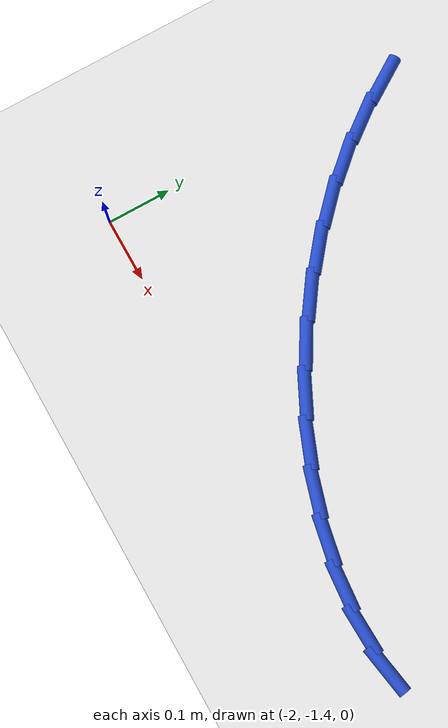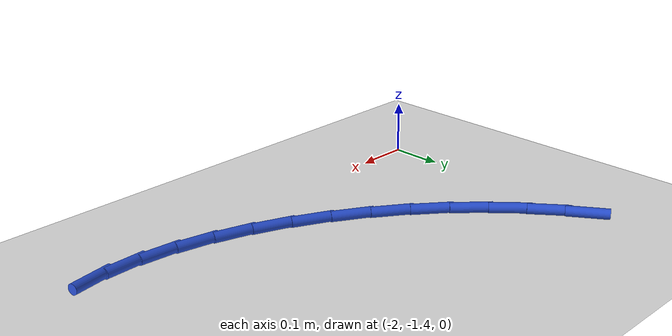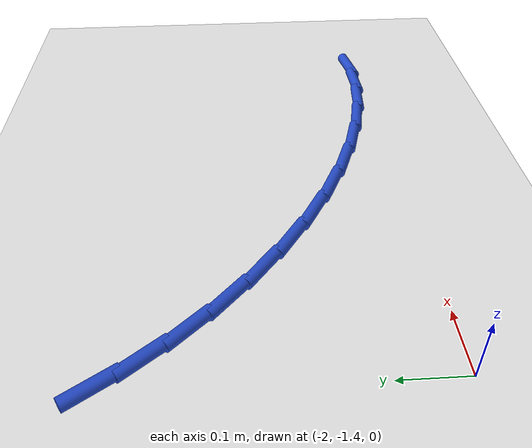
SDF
<sdf version="1.6">
 <world name="default">
  <model name="ground_plane">
   <static>1</static>
   <link name="link">
    <collision name="collision">
     <geometry><plane><normal>0 0 1</normal><size>100 100</size></plane></geometry>
     <surface><friction><ode><mu>100</mu><mu2>50</mu2></ode></friction></surface>
    </collision>
    <visual name="visual">
     <cast_shadows>0</cast_shadows>
     <geometry><plane><normal>0 0 1</normal><size>100 100</size></plane></geometry>
     <material>
      <script><uri>file://media/materials/scripts/gazebo.material</uri><name>Gazebo/WhiteGlow</name></script>
     </material>
    </visual>
   </link>
  </model>
  <model name="line">
   <link name="link_68">
    <pose>-1.9902774510173455 -0.9379573545390232 0.01 0 1.57 -0.9978041520730749</pose>
    <collision name="collision">
     <geometry><cylinder><radius>0.01</radius><length>0.08</length></cylinder></geometry>
    </collision>
    <visual name="visual">
     <material>
      <script><name>Gazebo/Blue</name><uri>file://media/materials/scripts/gazebo.material</uri></script>
     </material>
     <geometry><cylinder><radius>0.01</radius><length>0.08</length></cylinder></geometry>
    </visual>
   </link>
   <link name="link_69">
    <pose>-1.9532348307664225 -0.9953701350727663 0.01 0 1.57 -0.9185527965564565</pose>
    <collision name="collision">
     <geometry><cylinder><radius>0.01</radius><length>0.08</length></cylinder></geometry>
    </collision>
    <visual name="visual">
     <material>
      <script><name>Gazebo/Blue</name><uri>file://media/materials/scripts/gazebo.material</uri></script>
     </material>
     <geometry><cylinder><radius>0.01</radius><length>0.08</length></cylinder></geometry>
    </visual>
   </link>
   <link name="link_70">
    <pose>-1.9111626435898894 -1.0504564293194483 0.01 0 1.57 -0.8362066655872675</pose>
    <collision name="collision">
     <geometry><cylinder><radius>0.01</radius><length>0.08</length></cylinder></geometry>
    </collision>
    <visual name="visual">
     <material>
      <script><name>Gazebo/Blue</name><uri>file://media/materials/scripts/gazebo.material</uri></script>
     </material>
     <geometry><cylinder><radius>0.01</radius><length>0.08</length></cylinder></geometry>
    </visual>
   </link>
   <link name="link_71">
    <pose>-1.8637839587018659 -1.1029119078581022 0.01 0 1.57 -0.7570061099103159</pose>
    <collision name="collision">
     <geometry><cylinder><radius>0.01</radius><length>0.08</length></cylinder></geometry>
    </collision>
    <visual name="visual">
     <material>
      <script><name>Gazebo/Blue</name><uri>file://media/materials/scripts/gazebo.material</uri></script>
     </material>
     <geometry><cylinder><radius>0.01</radius><length>0.08</length></cylinder></geometry>
    </visual>
   </link>
   <link name="link_72">
    <pose>-1.8115348283307282 -1.1522752753017778 0.01 0 1.57 -0.681411631907683</pose>
    <collision name="collision">
     <geometry><cylinder><radius>0.01</radius><length>0.08</length></cylinder></geometry>
    </collision>
    <visual name="visual">
     <material>
      <script><name>Gazebo/Blue</name><uri>file://media/materials/scripts/gazebo.material</uri></script>
     </material>
     <geometry><cylinder><radius>0.01</radius><length>0.08</length></cylinder></geometry>
    </visual>
   </link>
   <link name="link_73">
    <pose>-1.7551226248018788 -1.1980255040956187 0.01 0 1.57 -0.60745382598283</pose>
    <collision name="collision">
     <geometry><cylinder><radius>0.01</radius><length>0.08</length></cylinder></geometry>
    </collision>
    <visual name="visual">
     <material>
      <script><name>Gazebo/Blue</name><uri>file://media/materials/scripts/gazebo.material</uri></script>
     </material>
     <geometry><cylinder><radius>0.01</radius><length>0.08</length></cylinder></geometry>
    </visual>
   </link>
   <link name="link_74">
    <pose>-1.6952552495511102 -1.2396414501990736 0.01 0 1.57 -0.5332458872346351</pose>
    <collision name="collision">
     <geometry><cylinder><radius>0.01</radius><length>0.08</length></cylinder></geometry>
    </collision>
    <visual name="visual">
     <material>
      <script><name>Gazebo/Blue</name><uri>file://media/materials/scripts/gazebo.material</uri></script>
     </material>
     <geometry><cylinder><radius>0.01</radius><length>0.08</length></cylinder></geometry>
    </visual>
   </link>
   <link name="link_75">
    <pose>-1.632640604014217 -1.2766019695715876 0.01 0 1.57 -0.45690549343468784</pose>
    <collision name="collision">
     <geometry><cylinder><radius>0.01</radius><length>0.08</length></cylinder></geometry>
    </collision>
    <visual name="visual">
     <material>
      <script><name>Gazebo/Blue</name><uri>file://media/materials/scripts/gazebo.material</uri></script>
     </material>
     <geometry><cylinder><radius>0.01</radius><length>0.08</length></cylinder></geometry>
    </visual>
   </link>
   <link name="link_76">
    <pose>-1.5679865896269911 -1.3083859181726096 0.01 0 1.57 -0.3764765764818713</pose>
    <collision name="collision">
     <geometry><cylinder><radius>0.01</radius><length>0.08</length></cylinder></geometry>
    </collision>
    <visual name="visual">
     <material>
      <script><name>Gazebo/Blue</name><uri>file://media/materials/scripts/gazebo.material</uri></script>
     </material>
     <geometry><cylinder><radius>0.01</radius><length>0.08</length></cylinder></geometry>
    </visual>
   </link>
   <link name="link_77">
    <pose>-1.5020011078252289 -1.3344721519615848 0.01 0 1.57 -0.289867425918214</pose>
    <collision name="collision">
     <geometry><cylinder><radius>0.01</radius><length>0.08</length></cylinder></geometry>
    </collision>
    <visual name="visual">
     <material>
      <script><name>Gazebo/Blue</name><uri>file://media/materials/scripts/gazebo.material</uri></script>
     </material>
     <geometry><cylinder><radius>0.01</radius><length>0.08</length></cylinder></geometry>
    </visual>
   </link>
   <link name="link_78">
    <pose>-1.435392060044721 -1.354339526897961 0.01 0 1.57 -0.1948276704549893</pose>
    <collision name="collision">
     <geometry><cylinder><radius>0.01</radius><length>0.08</length></cylinder></geometry>
    </collision>
    <visual name="visual">
     <material>
      <script><name>Gazebo/Blue</name><uri>file://media/materials/scripts/gazebo.material</uri></script>
     </material>
     <geometry><cylinder><radius>0.01</radius><length>0.08</length></cylinder></geometry>
    </visual>
   </link>
   <link name="link_79">
    <pose>-1.3688673477212634 -1.3674668989411851 0.01 0 1.57 -0.08900813882721782</pose>
    <collision name="collision">
     <geometry><cylinder><radius>0.01</radius><length>0.08</length></cylinder></geometry>
    </collision>
    <visual name="visual">
     <material>
      <script><name>Gazebo/Blue</name><uri>file://media/materials/scripts/gazebo.material</uri></script>
     </material>
     <geometry><cylinder><radius>0.01</radius><length>0.08</length></cylinder></geometry>
    </visual>
   </link>
   <link name="link_80">
    <pose>-1.3031348722906477 -1.3733331240507034 0.01 0 1.57 0.029821394048010527</pose>
    <collision name="collision">
     <geometry><cylinder><radius>0.01</radius><length>0.08</length></cylinder></geometry>
    </collision>
    <visual name="visual">
     <material>
      <script><name>Gazebo/Blue</name><uri>file://media/materials/scripts/gazebo.material</uri></script>
     </material>
     <geometry><cylinder><radius>0.01</radius><length>0.08</length></cylinder></geometry>
    </visual>
   </link>
   <link name="link_81">
    <pose>-1.23890253518867 -1.3714170581859644 0.01 0 1.57 0.16325764925746677</pose>
    <collision name="collision">
     <geometry><cylinder><radius>0.01</radius><length>0.08</length></cylinder></geometry>
    </collision>
    <visual name="visual">
     <material>
      <script><name>Gazebo/Blue</name><uri>file://media/materials/scripts/gazebo.material</uri></script>
     </material>
     <geometry><cylinder><radius>0.01</radius><length>0.08</length></cylinder></geometry>
    </visual>
   </link>
  </model>
 </world>
</sdf>
